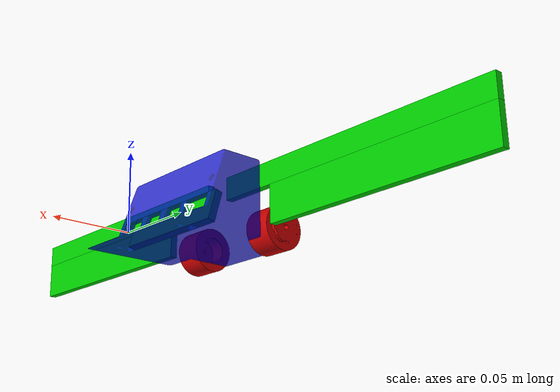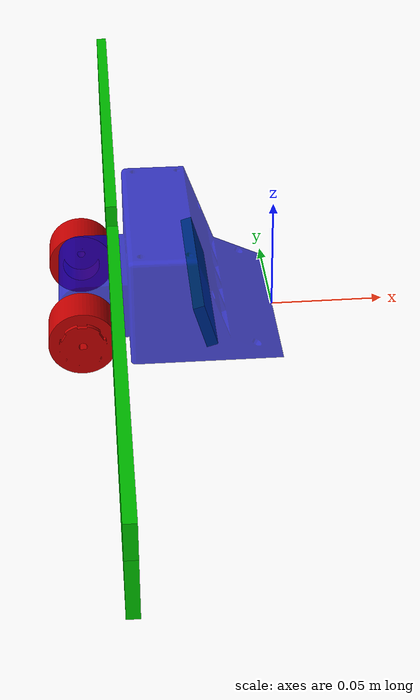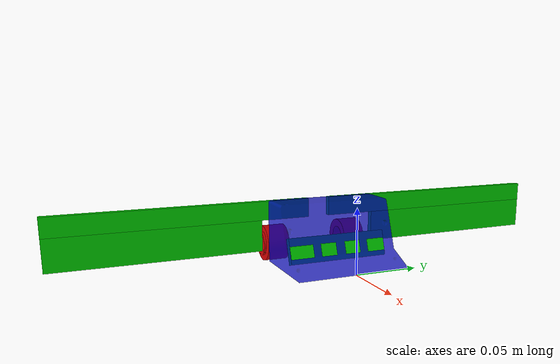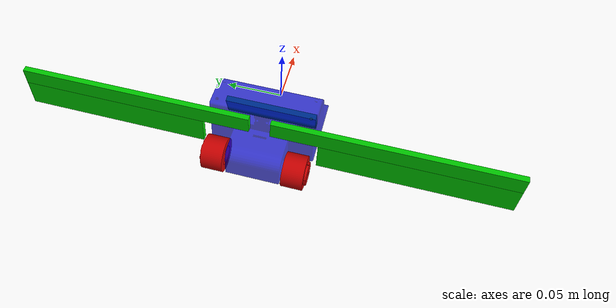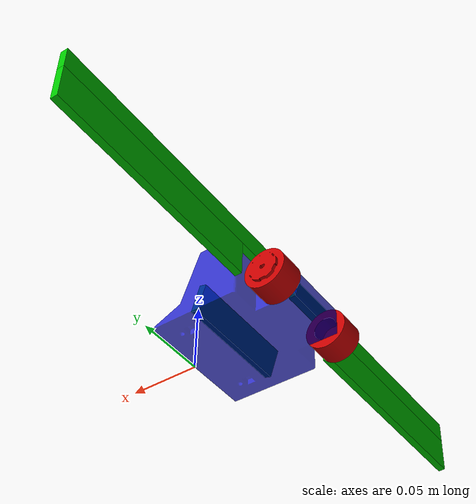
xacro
<?xml version="1.0"?>
<robot name="ARES_robot_model" xmlns:xacro="http://www.ros.org/wiki/xacro">

    <!--Wymiary robota-->
    <xacro:property name="bodyWidth" value="0.09"/>
    <xacro:property name="bodyLength" value="0.1"/>
    <xacro:property name="bodyHeight" value="0.05"/>
    <xacro:property name="wheelRadius" value="0.0145"/>

    <!--Kolory-->
    <material name="red">
        <color rgba="0.8 0.0 0.0 1.0"/>
    </material>
    <material name="blue">
        <color rgba="0.0 0.0 0.8 0.75"/>
    </material>
    <material name="green">
        <color rgba="0.0 0.8 0.0 1.0"/>
    </material>

    <!--Makro do inercji-->
    <xacro:macro name="default_inertial" params="mass">
        <inertial>
            <mass value="${mass}" />
            <inertia ixx="1e-3" ixy="0.0" ixz="0.0" iyy="1e-3" iyz="0.0" izz="1e-3" />
        </inertial>
    </xacro:macro>

    <!--Bryła robota-->
    <link name="body">
        <visual>
            <origin xyz="0.0 0.0 0.0" rpy="0.0 0.0 ${pi/2}"/>
            <geometry>
                <mesh filename="file://$(find ARES_robot_model)/meshes/body.STL" scale="0.001 0.001 0.001"/>
            </geometry>
            <material name="blue"/>
        </visual>
        <collision>
            <origin xyz="${-bodyLength/2} 0.0 ${bodyHeight/2}" rpy="0.0 0.0 ${pi/2}"/>
            <geometry>
                <box size="${bodyLength} ${bodyWidth} ${bodyHeight}"/>
            </geometry>
        </collision>
        <xacro:default_inertial mass="0.3"/>
    </link>

    <!--Lewe koło-->
    <link name="left_wheel">
        <visual>
            <origin xyz="0.0 0.01 0.0" rpy="${pi/2} 0.0 0.0"/>
            <geometry>
                <mesh filename="file://$(find ARES_robot_model)/meshes/wheel.STL" scale="0.001 0.001 0.001"/>
            </geometry>
            <material name="red"/>
        </visual>
        <collision>
            <origin xyz="0.0 0.01 0.0" rpy="${pi/2} 0.0 0.0"/>
            <geometry>
                <cylinder radius="${wheelRadius}" length="0.02"/>
            </geometry>
        </collision>
        <xacro:default_inertial mass="0.1"/>
    </link>
    <joint name="left_wheel_joint" type="continuous">
        <parent link="body"/>
        <child link="left_wheel"/>
        <origin xyz="${0.015-bodyLength} 0.035 0.01" rpy="0.0 0.0 0.0"/>
        <axis xyz="0.0 1.0 0.0"/>
        <limit effort="100" velocity="10.0"/>
        <dynamics damping="0.1" friction="0.1"/>
    </joint>

    <!--Prawe koło-->
    <link name="right_wheel">
        <visual>
            <origin xyz="0.0 -0.01 0.0" rpy="${-pi/2} 0.0 0.0"/>
            <geometry>
                <mesh filename="file://$(find ARES_robot_model)/meshes/wheel.STL" scale="0.001 0.001 0.001"/>
            </geometry>
            <material name="red"/>
        </visual>
        <collision>
            <origin xyz="0.0 -0.01 0.0" rpy="${-pi/2} 0.0 0.0"/>
            <geometry>
                <cylinder radius="${wheelRadius}" length="0.02"/>
            </geometry>
        </collision>
        <xacro:default_inertial mass="0.1"/>
    </link>
    <joint name="right_wheel_joint" type="continuous">
        <parent link="body"/>
        <child link="right_wheel"/>
        <origin xyz="${0.015-bodyLength} -0.035 0.01" rpy="0.0 0.0 0.0"/>
        <axis xyz="0.0 1.0 0.0"/>
        <limit effort="100" velocity="10.0"/>
        <dynamics damping="0.1" friction="0.1"/>
    </joint>

    <!--LIDAR-->
    <link name="lidar">
        <visual>
            <origin xyz="0.0 0.0 0.0" rpy="0.0 ${-pi/16} 0.0"/>
            <geometry>
                <box size="0.005 0.08 0.02"/>
            </geometry>
            <material name="green"/>
        </visual>
        <collision>
            <origin xyz="0.0 0.0 0.0" rpy="0.0 ${-pi/16} 0.0"/>
            <geometry>
                <box size="0.005 0.08 0.02"/>
            </geometry>
        </collision>
        <xacro:default_inertial mass="0.03"/>
    </link>
    <joint name="lidar_joint" type="fixed">
        <parent link="body"/>
        <child link="lidar"/>
        <origin xyz="-0.033 0.0 0.014" rpy="0.0 ${-pi/32} 0.0"/>
    </joint>

    <!--Skrzydlo lewe-->
    <link name="left_wing">
        <visual>
            <origin xyz="-0.0025 0.095 0.0" rpy="0.0 0.0 0.0"/>
            <geometry>
                <box size="0.005 0.2 0.015"/>
            </geometry>
            <material name="green"/>
        </visual>
        <visual>
            <origin xyz="-0.0025 0.115 -0.02" rpy="0.0 0.0 0.0"/>
            <geometry>
                <box size="0.005 0.16 0.025"/>
            </geometry>
            <material name="green"/>
        </visual>
        <collision>
            <origin xyz="-0.0025 0.095 0.0" rpy="0.0 0.0 0.0"/>
            <geometry>
                <box size="0.005 0.2 0.015"/>
            </geometry>
        </collision>
        <collision>
            <origin xyz="-0.0025 0.115 -0.02" rpy="0.0 0.0 0.0"/>
            <geometry>
                <box size="0.005 0.16 0.025"/>
            </geometry>
        </collision>
        <xacro:default_inertial mass="0.01"/>
    </link>
    <joint name="left_wing_joint" type="fixed">
        <parent link="body"/>
        <child link="left_wing"/>
        <origin xyz="-0.068 0.014 0.04" rpy="0.0 0.0 0.0"/>
    </joint>

    <!--Skrzydlo prawo-->
    <link name="right_wing">
        <visual>
            <origin xyz="-0.0025 -0.095 0.0" rpy="0.0 0.0 0.0"/>
            <geometry>
                <box size="0.005 0.2 0.015"/>
            </geometry>
            <material name="green"/>
        </visual>
        <visual>
            <origin xyz="-0.0025 -0.115 -0.02" rpy="0.0 0.0 0.0"/>
            <geometry>
                <box size="0.005 0.16 0.025"/>
            </geometry>
            <material name="green"/>
        </visual>
        <collision>
            <origin xyz="-0.0025 -0.095 0.0" rpy="0.0 0.0 0.0"/>
            <geometry>
                <box size="0.005 0.2 0.015"/>
            </geometry>
        </collision>
        <collision>
            <origin xyz="-0.0025 -0.115 -0.02" rpy="0.0 0.0 0.0"/>
            <geometry>
                <box size="0.005 0.16 0.025"/>
            </geometry>
        </collision>
        <xacro:default_inertial mass="0.01"/>
    </link>
    <joint name="right_wing_joint" type="fixed">
        <parent link="body"/>
        <child link="right_wing"/>
        <origin xyz="-0.068 -0.014 0.04" rpy="0.0 0.0 0.0"/>
    </joint>

    <!-- Include pliku Gazebo lidar oraz differential drive controller-->
    <xacro:include filename="$(find ARES_robot_model)/urdf/configurations.gazebo.xml"/>
    <xacro:include filename="$(find ARES_robot_model)/urdf/lidar.gazebo.xml"/>
    <xacro:include filename="$(find ARES_robot_model)/urdf/differential_drive.gazebo.xml"/>

</robot>
